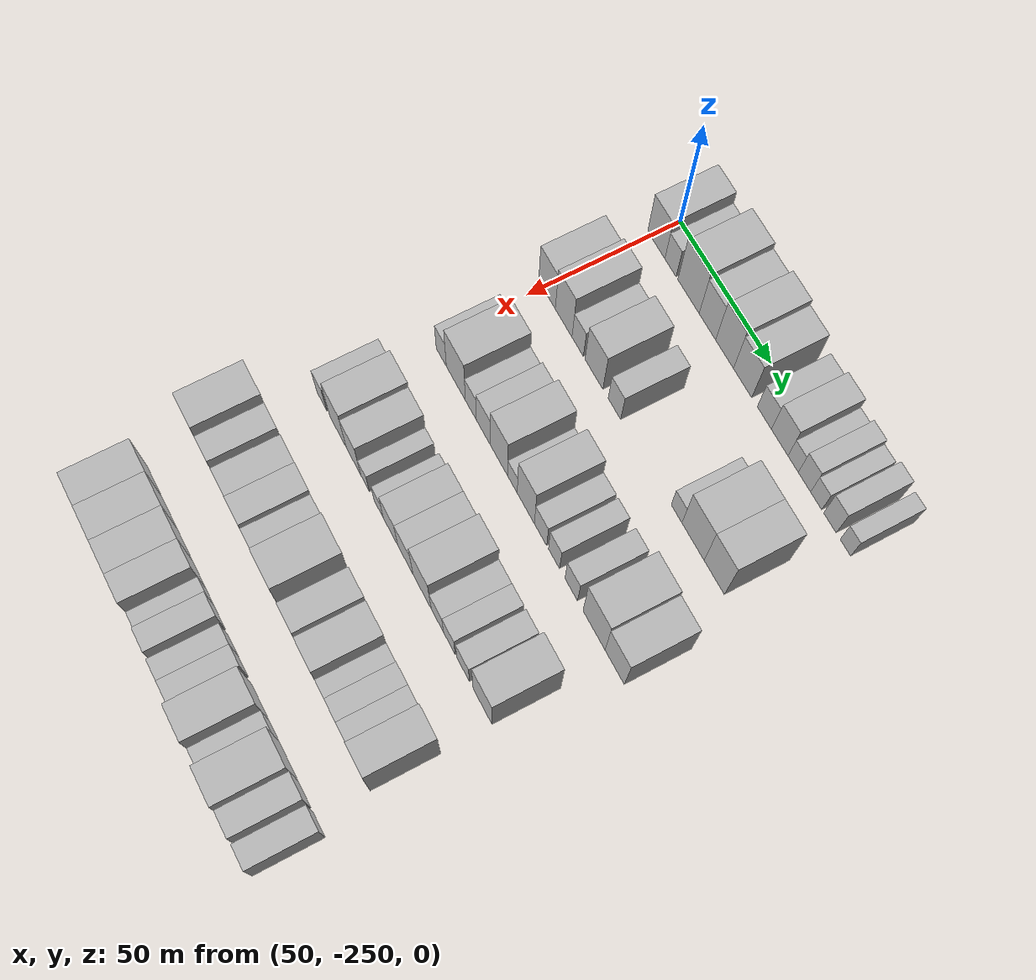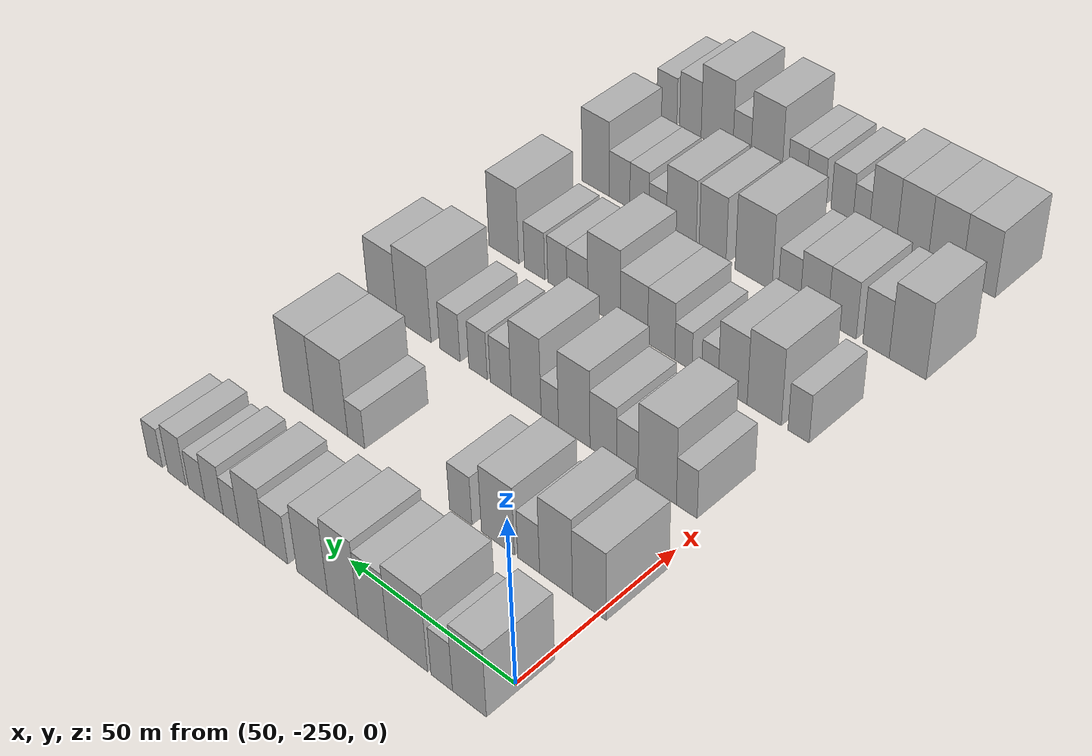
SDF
<sdf version="1.6">
 <world name="default">
  <model name="building_36">
   <static>1</static>
   <pose>50.0000 -246.6851 0 0.000000 0.000000 0.000000</pose>
   <link name="link">
    <pose>0 0 10.50 0 0 0</pose>
    <collision name="collision"><geometry><box><size>20.0000 9.8079 21.0000</size></box></geometry></collision>
    <visual name="visual">
     <cast_shadows>0</cast_shadows>
     <geometry><box><size>20.0000 9.8079 21.0000</size></box></geometry>
     <material>
      <script>
       <uri>model://HANNAS_wall/materials/scripts</uri>
       <uri>model://HANNAS_wall/materials/textures</uri>
       <name>vrc/HANNAS_wall</name>
      </script>
     </material>
    </visual>
   </link>
  </model>
  <model name="building_37">
   <static>1</static>
   <pose>50.0000 -238.6053 0 0.000000 0.000000 0.000000</pose>
   <link name="link">
    <pose>0 0 7.50 0 0 0</pose>
    <collision name="collision"><geometry><box><size>20.0000 6.3517 15.0000</size></box></geometry></collision>
    <visual name="visual">
     <cast_shadows>0</cast_shadows>
     <geometry><box><size>20.0000 6.3517 15.0000</size></box></geometry>
     <material>
      <script>
       <uri>model://HANNAS_wall/materials/scripts</uri>
       <uri>model://HANNAS_wall/materials/textures</uri>
       <name>vrc/HANNAS_wall</name>
      </script>
     </material>
    </visual>
   </link>
  </model>
  <model name="building_38">
   <static>1</static>
   <pose>50.0000 -228.4566 0 0.000000 0.000000 0.000000</pose>
   <link name="link">
    <pose>0 0 12.00 0 0 0</pose>
    <collision name="collision"><geometry><box><size>20.0000 11.9458 24.0000</size></box></geometry></collision>
    <visual name="visual">
     <cast_shadows>0</cast_shadows>
     <geometry><box><size>20.0000 11.9458 24.0000</size></box></geometry>
     <material>
      <script>
       <uri>model://HANNAS_wall/materials/scripts</uri>
       <uri>model://HANNAS_wall/materials/textures</uri>
       <name>vrc/HANNAS_wall</name>
      </script>
     </material>
    </visual>
   </link>
  </model>
  <model name="building_39">
   <static>1</static>
   <pose>50.0000 -217.9186 0 0.000000 0.000000 0.000000</pose>
   <link name="link">
    <pose>0 0 10.50 0 0 0</pose>
    <collision name="collision"><geometry><box><size>20.0000 9.1301 21.0000</size></box></geometry></collision>
    <visual name="visual">
     <cast_shadows>0</cast_shadows>
     <geometry><box><size>20.0000 9.1301 21.0000</size></box></geometry>
     <material>
      <script>
       <uri>model://HANNAS_wall/materials/scripts</uri>
       <uri>model://HANNAS_wall/materials/textures</uri>
       <name>vrc/HANNAS_wall</name>
      </script>
     </material>
    </visual>
   </link>
  </model>
  <model name="building_40">
   <static>1</static>
   <pose>50.0000 -208.4874 0 0.000000 0.000000 0.000000</pose>
   <link name="link">
    <pose>0 0 12.00 0 0 0</pose>
    <collision name="collision"><geometry><box><size>20.0000 9.7323 24.0000</size></box></geometry></collision>
    <visual name="visual">
     <cast_shadows>0</cast_shadows>
     <geometry><box><size>20.0000 9.7323 24.0000</size></box></geometry>
     <material>
      <script>
       <uri>model://HANNAS_wall/materials/scripts</uri>
       <uri>model://HANNAS_wall/materials/textures</uri>
       <name>vrc/HANNAS_wall</name>
      </script>
     </material>
    </visual>
   </link>
  </model>
  <model name="building_41">
   <static>1</static>
   <pose>50.0000 -198.7109 0 0.000000 0.000000 0.000000</pose>
   <link name="link">
    <pose>0 0 10.50 0 0 0</pose>
    <collision name="collision"><geometry><box><size>20.0000 9.8207 21.0000</size></box></geometry></collision>
    <visual name="visual">
     <cast_shadows>0</cast_shadows>
     <geometry><box><size>20.0000 9.8207 21.0000</size></box></geometry>
     <material>
      <script>
       <uri>model://HANNAS_wall/materials/scripts</uri>
       <uri>model://HANNAS_wall/materials/textures</uri>
       <name>vrc/HANNAS_wall</name>
      </script>
     </material>
    </visual>
   </link>
  </model>
  <model name="building_42">
   <static>1</static>
   <pose>50.0000 -187.0634 0 0.000000 0.000000 0.000000</pose>
   <link name="link">
    <pose>0 0 7.50 0 0 0</pose>
    <collision name="collision"><geometry><box><size>20.0000 7.4744 15.0000</size></box></geometry></collision>
    <visual name="visual">
     <cast_shadows>0</cast_shadows>
     <geometry><box><size>20.0000 7.4744 15.0000</size></box></geometry>
     <material>
      <script>
       <uri>model://HANNAS_wall/materials/scripts</uri>
       <uri>model://HANNAS_wall/materials/textures</uri>
       <name>vrc/HANNAS_wall</name>
      </script>
     </material>
    </visual>
   </link>
  </model>
  <model name="building_43">
   <static>1</static>
   <pose>50.0000 -178.9707 0 0.000000 0.000000 0.000000</pose>
   <link name="link">
    <pose>0 0 9.00 0 0 0</pose>
    <collision name="collision"><geometry><box><size>20.0000 8.7109 18.0000</size></box></geometry></collision>
    <visual name="visual">
     <cast_shadows>0</cast_shadows>
     <geometry><box><size>20.0000 8.7109 18.0000</size></box></geometry>
     <material>
      <script>
       <uri>model://HANNAS_wall/materials/scripts</uri>
       <uri>model://HANNAS_wall/materials/textures</uri>
       <name>vrc/HANNAS_wall</name>
      </script>
     </material>
    </visual>
   </link>
  </model>
  <model name="building_44">
   <static>1</static>
   <pose>50.0000 -171.9413 0 0.000000 0.000000 0.000000</pose>
   <link name="link">
    <pose>0 0 6.00 0 0 0</pose>
    <collision name="collision"><geometry><box><size>20.0000 5.3480 12.0000</size></box></geometry></collision>
    <visual name="visual">
     <cast_shadows>0</cast_shadows>
     <geometry><box><size>20.0000 5.3480 12.0000</size></box></geometry>
     <material>
      <script>
       <uri>model://HANNAS_wall/materials/scripts</uri>
       <uri>model://HANNAS_wall/materials/textures</uri>
       <name>vrc/HANNAS_wall</name>
      </script>
     </material>
    </visual>
   </link>
  </model>
  <model name="building_45">
   <static>1</static>
   <pose>50.0000 -166.0851 0 0.000000 0.000000 0.000000</pose>
   <link name="link">
    <pose>0 0 7.50 0 0 0</pose>
    <collision name="collision"><geometry><box><size>20.0000 6.3643 15.0000</size></box></geometry></collision>
    <visual name="visual">
     <cast_shadows>0</cast_shadows>
     <geometry><box><size>20.0000 6.3643 15.0000</size></box></geometry>
     <material>
      <script>
       <uri>model://HANNAS_wall/materials/scripts</uri>
       <uri>model://HANNAS_wall/materials/textures</uri>
       <name>vrc/HANNAS_wall</name>
      </script>
     </material>
    </visual>
   </link>
  </model>
  <model name="building_46">
   <static>1</static>
   <pose>50.0000 -160.0724 0 0.000000 0.000000 0.000000</pose>
   <link name="link">
    <pose>0 0 6.00 0 0 0</pose>
    <collision name="collision"><geometry><box><size>20.0000 5.6612 12.0000</size></box></geometry></collision>
    <visual name="visual">
     <cast_shadows>0</cast_shadows>
     <geometry><box><size>20.0000 5.6612 12.0000</size></box></geometry>
     <material>
      <script>
       <uri>model://HANNAS_wall/materials/scripts</uri>
       <uri>model://HANNAS_wall/materials/textures</uri>
       <name>vrc/HANNAS_wall</name>
      </script>
     </material>
    </visual>
   </link>
  </model>
  <model name="building_47">
   <static>1</static>
   <pose>50.0000 -153.0864 0 0.000000 0.000000 0.000000</pose>
   <link name="link">
    <pose>0 0 7.50 0 0 0</pose>
    <collision name="collision"><geometry><box><size>20.0000 6.3107 15.0000</size></box></geometry></collision>
    <visual name="visual">
     <cast_shadows>0</cast_shadows>
     <geometry><box><size>20.0000 6.3107 15.0000</size></box></geometry>
     <material>
      <script>
       <uri>model://HANNAS_wall/materials/scripts</uri>
       <uri>model://HANNAS_wall/materials/textures</uri>
       <name>vrc/HANNAS_wall</name>
      </script>
     </material>
    </visual>
   </link>
  </model>
  <model name="building_48">
   <static>1</static>
   <pose>50.0000 -145.3106 0 0.000000 0.000000 0.000000</pose>
   <link name="link">
    <pose>0 0 6.00 0 0 0</pose>
    <collision name="collision"><geometry><box><size>20.0000 5.2409 12.0000</size></box></geometry></collision>
    <visual name="visual">
     <cast_shadows>0</cast_shadows>
     <geometry><box><size>20.0000 5.2409 12.0000</size></box></geometry>
     <material>
      <script>
       <uri>model://HANNAS_wall/materials/scripts</uri>
       <uri>model://HANNAS_wall/materials/textures</uri>
       <name>vrc/HANNAS_wall</name>
      </script>
     </material>
    </visual>
   </link>
  </model>
  <model name="building_165">
   <static>1</static>
   <pose>85.0000 -247.3990 0 0.000000 0.000000 0.000000</pose>
   <link name="link">
    <pose>0 0 10.50 0 0 0</pose>
    <collision name="collision"><geometry><box><size>20.0000 9.7991 21.0000</size></box></geometry></collision>
    <visual name="visual">
     <cast_shadows>0</cast_shadows>
     <geometry><box><size>20.0000 9.7991 21.0000</size></box></geometry>
     <material>
      <script>
       <uri>model://HANNAS_wall/materials/scripts</uri>
       <uri>model://HANNAS_wall/materials/textures</uri>
       <name>vrc/HANNAS_wall</name>
      </script>
     </material>
    </visual>
   </link>
  </model>
  <model name="building_166">
   <static>1</static>
   <pose>85.0000 -237.6207 0 0.000000 0.000000 0.000000</pose>
   <link name="link">
    <pose>0 0 12.00 0 0 0</pose>
    <collision name="collision"><geometry><box><size>20.0000 9.7574 24.0000</size></box></geometry></collision>
    <visual name="visual">
     <cast_shadows>0</cast_shadows>
     <geometry><box><size>20.0000 9.7574 24.0000</size></box></geometry>
     <material>
      <script>
       <uri>model://HANNAS_wall/materials/scripts</uri>
       <uri>model://HANNAS_wall/materials/textures</uri>
       <name>vrc/HANNAS_wall</name>
      </script>
     </material>
    </visual>
   </link>
  </model>
  <model name="building_167">
   <static>1</static>
   <pose>85.0000 -229.4481 0 0.000000 0.000000 0.000000</pose>
   <link name="link">
    <pose>0 0 7.50 0 0 0</pose>
    <collision name="collision"><geometry><box><size>20.0000 6.5878 15.0000</size></box></geometry></collision>
    <visual name="visual">
     <cast_shadows>0</cast_shadows>
     <geometry><box><size>20.0000 6.5878 15.0000</size></box></geometry>
     <material>
      <script>
       <uri>model://HANNAS_wall/materials/scripts</uri>
       <uri>model://HANNAS_wall/materials/textures</uri>
       <name>vrc/HANNAS_wall</name>
      </script>
     </material>
    </visual>
   </link>
  </model>
  <model name="building_168">
   <static>1</static>
   <pose>85.0000 -220.0871 0 0.000000 0.000000 0.000000</pose>
   <link name="link">
    <pose>0 0 10.50 0 0 0</pose>
    <collision name="collision"><geometry><box><size>20.0000 10.1341 21.0000</size></box></geometry></collision>
    <visual name="visual">
     <cast_shadows>0</cast_shadows>
     <geometry><box><size>20.0000 10.1341 21.0000</size></box></geometry>
     <material>
      <script>
       <uri>model://HANNAS_wall/materials/scripts</uri>
       <uri>model://HANNAS_wall/materials/textures</uri>
       <name>vrc/HANNAS_wall</name>
      </script>
     </material>
    </visual>
   </link>
  </model>
  <model name="building_169">
   <static>1</static>
   <pose>85.0000 -208.5046 0 0.000000 0.000000 0.000000</pose>
   <link name="link">
    <pose>0 0 7.50 0 0 0</pose>
    <collision name="collision"><geometry><box><size>20.0000 7.0311 15.0000</size></box></geometry></collision>
    <visual name="visual">
     <cast_shadows>0</cast_shadows>
     <geometry><box><size>20.0000 7.0311 15.0000</size></box></geometry>
     <material>
      <script>
       <uri>model://HANNAS_wall/materials/scripts</uri>
       <uri>model://HANNAS_wall/materials/textures</uri>
       <name>vrc/HANNAS_wall</name>
      </script>
     </material>
    </visual>
   </link>
  </model>
  <model name="building_170">
   <static>1</static>
   <pose>85.0000 -174.3776 0 0.000000 0.000000 0.000000</pose>
   <link name="link">
    <pose>0 0 6.00 0 0 0</pose>
    <collision name="collision"><geometry><box><size>20.0000 5.7410 12.0000</size></box></geometry></collision>
    <visual name="visual">
     <cast_shadows>0</cast_shadows>
     <geometry><box><size>20.0000 5.7410 12.0000</size></box></geometry>
     <material>
      <script>
       <uri>model://HANNAS_wall/materials/scripts</uri>
       <uri>model://HANNAS_wall/materials/textures</uri>
       <name>vrc/HANNAS_wall</name>
      </script>
     </material>
    </visual>
   </link>
  </model>
  <model name="building_171">
   <static>1</static>
   <pose>85.0000 -165.6450 0 0.000000 0.000000 0.000000</pose>
   <link name="link">
    <pose>0 0 12.00 0 0 0</pose>
    <collision name="collision"><geometry><box><size>20.0000 11.7242 24.0000</size></box></geometry></collision>
    <visual name="visual">
     <cast_shadows>0</cast_shadows>
     <geometry><box><size>20.0000 11.7242 24.0000</size></box></geometry>
     <material>
      <script>
       <uri>model://HANNAS_wall/materials/scripts</uri>
       <uri>model://HANNAS_wall/materials/textures</uri>
       <name>vrc/HANNAS_wall</name>
      </script>
     </material>
    </visual>
   </link>
  </model>
  <model name="building_172">
   <static>1</static>
   <pose>85.0000 -154.4958 0 0.000000 0.000000 0.000000</pose>
   <link name="link">
    <pose>0 0 12.00 0 0 0</pose>
    <collision name="collision"><geometry><box><size>20.0000 10.5742 24.0000</size></box></geometry></collision>
    <visual name="visual">
     <cast_shadows>0</cast_shadows>
     <geometry><box><size>20.0000 10.5742 24.0000</size></box></geometry>
     <material>
      <script>
       <uri>model://HANNAS_wall/materials/scripts</uri>
       <uri>model://HANNAS_wall/materials/textures</uri>
       <name>vrc/HANNAS_wall</name>
      </script>
     </material>
    </visual>
   </link>
  </model>
  <model name="building_288">
   <static>1</static>
   <pose>120.0000 -244.2285 0 0.000000 0.000000 0.000000</pose>
   <link name="link">
    <pose>0 0 7.50 0 0 0</pose>
    <collision name="collision"><geometry><box><size>20.0000 6.1124 15.0000</size></box></geometry></collision>
    <visual name="visual">
     <cast_shadows>0</cast_shadows>
     <geometry><box><size>20.0000 6.1124 15.0000</size></box></geometry>
     <material>
      <script>
       <uri>model://HANNAS_wall/materials/scripts</uri>
       <uri>model://HANNAS_wall/materials/textures</uri>
       <name>vrc/HANNAS_wall</name>
      </script>
     </material>
    </visual>
   </link>
  </model>
  <model name="building_289">
   <static>1</static>
   <pose>120.0000 -235.4474 0 0.000000 0.000000 0.000000</pose>
   <link name="link">
    <pose>0 0 12.00 0 0 0</pose>
    <collision name="collision"><geometry><box><size>20.0000 11.4498 24.0000</size></box></geometry></collision>
    <visual name="visual">
     <cast_shadows>0</cast_shadows>
     <geometry><box><size>20.0000 11.4498 24.0000</size></box></geometry>
     <material>
      <script>
       <uri>model://HANNAS_wall/materials/scripts</uri>
       <uri>model://HANNAS_wall/materials/textures</uri>
       <name>vrc/HANNAS_wall</name>
      </script>
     </material>
    </visual>
   </link>
  </model>
  <model name="building_290">
   <static>1</static>
   <pose>120.0000 -226.4580 0 0.000000 0.000000 0.000000</pose>
   <link name="link">
    <pose>0 0 7.50 0 0 0</pose>
    <collision name="collision"><geometry><box><size>20.0000 6.5289 15.0000</size></box></geometry></collision>
    <visual name="visual">
     <cast_shadows>0</cast_shadows>
     <geometry><box><size>20.0000 6.5289 15.0000</size></box></geometry>
     <material>
      <script>
       <uri>model://HANNAS_wall/materials/scripts</uri>
       <uri>model://HANNAS_wall/materials/textures</uri>
       <name>vrc/HANNAS_wall</name>
      </script>
     </material>
    </visual>
   </link>
  </model>
  <model name="building_291">
   <static>1</static>
   <pose>120.0000 -219.0518 0 0.000000 0.000000 0.000000</pose>
   <link name="link">
    <pose>0 0 9.00 0 0 0</pose>
    <collision name="collision"><geometry><box><size>20.0000 8.2834 18.0000</size></box></geometry></collision>
    <visual name="visual">
     <cast_shadows>0</cast_shadows>
     <geometry><box><size>20.0000 8.2834 18.0000</size></box></geometry>
     <material>
      <script>
       <uri>model://HANNAS_wall/materials/scripts</uri>
       <uri>model://HANNAS_wall/materials/textures</uri>
       <name>vrc/HANNAS_wall</name>
      </script>
     </material>
    </visual>
   </link>
  </model>
  <model name="building_292">
   <static>1</static>
   <pose>120.0000 -209.9386 0 0.000000 0.000000 0.000000</pose>
   <link name="link">
    <pose>0 0 12.00 0 0 0</pose>
    <collision name="collision"><geometry><box><size>20.0000 9.9431 24.0000</size></box></geometry></collision>
    <visual name="visual">
     <cast_shadows>0</cast_shadows>
     <geometry><box><size>20.0000 9.9431 24.0000</size></box></geometry>
     <material>
      <script>
       <uri>model://HANNAS_wall/materials/scripts</uri>
       <uri>model://HANNAS_wall/materials/textures</uri>
       <name>vrc/HANNAS_wall</name>
      </script>
     </material>
    </visual>
   </link>
  </model>
  <model name="building_293">
   <static>1</static>
   <pose>120.0000 -202.1947 0 0.000000 0.000000 0.000000</pose>
   <link name="link">
    <pose>0 0 6.00 0 0 0</pose>
    <collision name="collision"><geometry><box><size>20.0000 5.5446 12.0000</size></box></geometry></collision>
    <visual name="visual">
     <cast_shadows>0</cast_shadows>
     <geometry><box><size>20.0000 5.5446 12.0000</size></box></geometry>
     <material>
      <script>
       <uri>model://HANNAS_wall/materials/scripts</uri>
       <uri>model://HANNAS_wall/materials/textures</uri>
       <name>vrc/HANNAS_wall</name>
      </script>
     </material>
    </visual>
   </link>
  </model>
  <model name="building_294">
   <static>1</static>
   <pose>120.0000 -194.5436 0 0.000000 0.000000 0.000000</pose>
   <link name="link">
    <pose>0 0 12.00 0 0 0</pose>
    <collision name="collision"><geometry><box><size>20.0000 9.7576 24.0000</size></box></geometry></collision>
    <visual name="visual">
     <cast_shadows>0</cast_shadows>
     <geometry><box><size>20.0000 9.7576 24.0000</size></box></geometry>
     <material>
      <script>
       <uri>model://HANNAS_wall/materials/scripts</uri>
       <uri>model://HANNAS_wall/materials/textures</uri>
       <name>vrc/HANNAS_wall</name>
      </script>
     </material>
    </visual>
   </link>
  </model>
  <model name="building_295">
   <static>1</static>
   <pose>120.0000 -186.2116 0 0.000000 0.000000 0.000000</pose>
   <link name="link">
    <pose>0 0 7.50 0 0 0</pose>
    <collision name="collision"><geometry><box><size>20.0000 6.9064 15.0000</size></box></geometry></collision>
    <visual name="visual">
     <cast_shadows>0</cast_shadows>
     <geometry><box><size>20.0000 6.9064 15.0000</size></box></geometry>
     <material>
      <script>
       <uri>model://HANNAS_wall/materials/scripts</uri>
       <uri>model://HANNAS_wall/materials/textures</uri>
       <name>vrc/HANNAS_wall</name>
      </script>
     </material>
    </visual>
   </link>
  </model>
  <model name="building_296">
   <static>1</static>
   <pose>120.0000 -178.6757 0 0.000000 0.000000 0.000000</pose>
   <link name="link">
    <pose>0 0 7.50 0 0 0</pose>
    <collision name="collision"><geometry><box><size>20.0000 6.1654 15.0000</size></box></geometry></collision>
    <visual name="visual">
     <cast_shadows>0</cast_shadows>
     <geometry><box><size>20.0000 6.1654 15.0000</size></box></geometry>
     <material>
      <script>
       <uri>model://HANNAS_wall/materials/scripts</uri>
       <uri>model://HANNAS_wall/materials/textures</uri>
       <name>vrc/HANNAS_wall</name>
      </script>
     </material>
    </visual>
   </link>
  </model>
  <model name="building_297">
   <static>1</static>
   <pose>120.0000 -169.1448 0 0.000000 0.000000 0.000000</pose>
   <link name="link">
    <pose>0 0 7.50 0 0 0</pose>
    <collision name="collision"><geometry><box><size>20.0000 6.8964 15.0000</size></box></geometry></collision>
    <visual name="visual">
     <cast_shadows>0</cast_shadows>
     <geometry><box><size>20.0000 6.8964 15.0000</size></box></geometry>
     <material>
      <script>
       <uri>model://HANNAS_wall/materials/scripts</uri>
       <uri>model://HANNAS_wall/materials/textures</uri>
       <name>vrc/HANNAS_wall</name>
      </script>
     </material>
    </visual>
   </link>
  </model>
  <model name="building_298">
   <static>1</static>
   <pose>120.0000 -156.7828 0 0.000000 0.000000 0.000000</pose>
   <link name="link">
    <pose>0 0 12.00 0 0 0</pose>
    <collision name="collision"><geometry><box><size>20.0000 11.8277 24.0000</size></box></geometry></collision>
    <visual name="visual">
     <cast_shadows>0</cast_shadows>
     <geometry><box><size>20.0000 11.8277 24.0000</size></box></geometry>
     <material>
      <script>
       <uri>model://HANNAS_wall/materials/scripts</uri>
       <uri>model://HANNAS_wall/materials/textures</uri>
       <name>vrc/HANNAS_wall</name>
      </script>
     </material>
    </visual>
   </link>
  </model>
  <model name="building_299">
   <static>1</static>
   <pose>120.0000 -145.7314 0 0.000000 0.000000 0.000000</pose>
   <link name="link">
    <pose>0 0 10.50 0 0 0</pose>
    <collision name="collision"><geometry><box><size>20.0000 10.2751 21.0000</size></box></geometry></collision>
    <visual name="visual">
     <cast_shadows>0</cast_shadows>
     <geometry><box><size>20.0000 10.2751 21.0000</size></box></geometry>
     <material>
      <script>
       <uri>model://HANNAS_wall/materials/scripts</uri>
       <uri>model://HANNAS_wall/materials/textures</uri>
       <name>vrc/HANNAS_wall</name>
      </script>
     </material>
    </visual>
   </link>
  </model>
  <model name="building_417">
   <static>1</static>
   <pose>155.0000 -247.7273 0 0.000000 0.000000 0.000000</pose>
   <link name="link">
    <pose>0 0 7.50 0 0 0</pose>
    <collision name="collision"><geometry><box><size>20.0000 6.2626 15.0000</size></box></geometry></collision>
    <visual name="visual">
     <cast_shadows>0</cast_shadows>
     <geometry><box><size>20.0000 6.2626 15.0000</size></box></geometry>
     <material>
      <script>
       <uri>model://HANNAS_wall/materials/scripts</uri>
       <uri>model://HANNAS_wall/materials/textures</uri>
       <name>vrc/HANNAS_wall</name>
      </script>
     </material>
    </visual>
   </link>
  </model>
  <model name="building_418">
   <static>1</static>
   <pose>155.0000 -237.4516 0 0.000000 0.000000 0.000000</pose>
   <link name="link">
    <pose>0 0 12.00 0 0 0</pose>
    <collision name="collision"><geometry><box><size>20.0000 10.2890 24.0000</size></box></geometry></collision>
    <visual name="visual">
     <cast_shadows>0</cast_shadows>
     <geometry><box><size>20.0000 10.2890 24.0000</size></box></geometry>
     <material>
      <script>
       <uri>model://HANNAS_wall/materials/scripts</uri>
       <uri>model://HANNAS_wall/materials/textures</uri>
       <name>vrc/HANNAS_wall</name>
      </script>
     </material>
    </visual>
   </link>
  </model>
  <model name="building_419">
   <static>1</static>
   <pose>155.0000 -227.8575 0 0.000000 0.000000 0.000000</pose>
   <link name="link">
    <pose>0 0 10.50 0 0 0</pose>
    <collision name="collision"><geometry><box><size>20.0000 8.8992 21.0000</size></box></geometry></collision>
    <visual name="visual">
     <cast_shadows>0</cast_shadows>
     <geometry><box><size>20.0000 8.8992 21.0000</size></box></geometry>
     <material>
      <script>
       <uri>model://HANNAS_wall/materials/scripts</uri>
       <uri>model://HANNAS_wall/materials/textures</uri>
       <name>vrc/HANNAS_wall</name>
      </script>
     </material>
    </visual>
   </link>
  </model>
  <model name="building_420">
   <static>1</static>
   <pose>155.0000 -220.8367 0 0.000000 0.000000 0.000000</pose>
   <link name="link">
    <pose>0 0 6.00 0 0 0</pose>
    <collision name="collision"><geometry><box><size>20.0000 5.1425 12.0000</size></box></geometry></collision>
    <visual name="visual">
     <cast_shadows>0</cast_shadows>
     <geometry><box><size>20.0000 5.1425 12.0000</size></box></geometry>
     <material>
      <script>
       <uri>model://HANNAS_wall/materials/scripts</uri>
       <uri>model://HANNAS_wall/materials/textures</uri>
       <name>vrc/HANNAS_wall</name>
      </script>
     </material>
    </visual>
   </link>
  </model>
  <model name="building_421">
   <static>1</static>
   <pose>155.0000 -212.5443 0 0.000000 0.000000 0.000000</pose>
   <link name="link">
    <pose>0 0 6.00 0 0 0</pose>
    <collision name="collision"><geometry><box><size>20.0000 5.4423 12.0000</size></box></geometry></collision>
    <visual name="visual">
     <cast_shadows>0</cast_shadows>
     <geometry><box><size>20.0000 5.4423 12.0000</size></box></geometry>
     <material>
      <script>
       <uri>model://HANNAS_wall/materials/scripts</uri>
       <uri>model://HANNAS_wall/materials/textures</uri>
       <name>vrc/HANNAS_wall</name>
      </script>
     </material>
    </visual>
   </link>
  </model>
  <model name="building_422">
   <static>1</static>
   <pose>155.0000 -205.4998 0 0.000000 0.000000 0.000000</pose>
   <link name="link">
    <pose>0 0 9.00 0 0 0</pose>
    <collision name="collision"><geometry><box><size>20.0000 8.6468 18.0000</size></box></geometry></collision>
    <visual name="visual">
     <cast_shadows>0</cast_shadows>
     <geometry><box><size>20.0000 8.6468 18.0000</size></box></geometry>
     <material>
      <script>
       <uri>model://HANNAS_wall/materials/scripts</uri>
       <uri>model://HANNAS_wall/materials/textures</uri>
       <name>vrc/HANNAS_wall</name>
      </script>
     </material>
    </visual>
   </link>
  </model>
  <model name="building_423">
   <static>1</static>
   <pose>155.0000 -196.7037 0 0.000000 0.000000 0.000000</pose>
   <link name="link">
    <pose>0 0 9.00 0 0 0</pose>
    <collision name="collision"><geometry><box><size>20.0000 8.9453 18.0000</size></box></geometry></collision>
    <visual name="visual">
     <cast_shadows>0</cast_shadows>
     <geometry><box><size>20.0000 8.9453 18.0000</size></box></geometry>
     <material>
      <script>
       <uri>model://HANNAS_wall/materials/scripts</uri>
       <uri>model://HANNAS_wall/materials/textures</uri>
       <name>vrc/HANNAS_wall</name>
      </script>
     </material>
    </visual>
   </link>
  </model>
  <model name="building_424">
   <static>1</static>
   <pose>155.0000 -186.8911 0 0.000000 0.000000 0.000000</pose>
   <link name="link">
    <pose>0 0 12.00 0 0 0</pose>
    <collision name="collision"><geometry><box><size>20.0000 10.6799 24.0000</size></box></geometry></collision>
    <visual name="visual">
     <cast_shadows>0</cast_shadows>
     <geometry><box><size>20.0000 10.6799 24.0000</size></box></geometry>
     <material>
      <script>
       <uri>model://HANNAS_wall/materials/scripts</uri>
       <uri>model://HANNAS_wall/materials/textures</uri>
       <name>vrc/HANNAS_wall</name>
      </script>
     </material>
    </visual>
   </link>
  </model>
  <model name="building_425">
   <static>1</static>
   <pose>155.0000 -178.0190 0 0.000000 0.000000 0.000000</pose>
   <link name="link">
    <pose>0 0 7.50 0 0 0</pose>
    <collision name="collision"><geometry><box><size>20.0000 7.0643 15.0000</size></box></geometry></collision>
    <visual name="visual">
     <cast_shadows>0</cast_shadows>
     <geometry><box><size>20.0000 7.0643 15.0000</size></box></geometry>
     <material>
      <script>
       <uri>model://HANNAS_wall/materials/scripts</uri>
       <uri>model://HANNAS_wall/materials/textures</uri>
       <name>vrc/HANNAS_wall</name>
      </script>
     </material>
    </visual>
   </link>
  </model>
  <model name="building_426">
   <static>1</static>
   <pose>155.0000 -171.1957 0 0.000000 0.000000 0.000000</pose>
   <link name="link">
    <pose>0 0 7.50 0 0 0</pose>
    <collision name="collision"><geometry><box><size>20.0000 6.5822 15.0000</size></box></geometry></collision>
    <visual name="visual">
     <cast_shadows>0</cast_shadows>
     <geometry><box><size>20.0000 6.5822 15.0000</size></box></geometry>
     <material>
      <script>
       <uri>model://HANNAS_wall/materials/scripts</uri>
       <uri>model://HANNAS_wall/materials/textures</uri>
       <name>vrc/HANNAS_wall</name>
      </script>
     </material>
    </visual>
   </link>
  </model>
  <model name="building_427">
   <static>1</static>
   <pose>155.0000 -163.3842 0 0.000000 0.000000 0.000000</pose>
   <link name="link">
    <pose>0 0 7.50 0 0 0</pose>
    <collision name="collision"><geometry><box><size>20.0000 7.0408 15.0000</size></box></geometry></collision>
    <visual name="visual">
     <cast_shadows>0</cast_shadows>
     <geometry><box><size>20.0000 7.0408 15.0000</size></box></geometry>
     <material>
      <script>
       <uri>model://HANNAS_wall/materials/scripts</uri>
       <uri>model://HANNAS_wall/materials/textures</uri>
       <name>vrc/HANNAS_wall</name>
      </script>
     </material>
    </visual>
   </link>
  </model>
  <model name="building_428">
   <static>1</static>
   <pose>155.0000 -152.6001 0 0.000000 0.000000 0.000000</pose>
   <link name="link">
    <pose>0 0 12.00 0 0 0</pose>
    <collision name="collision"><geometry><box><size>20.0000 10.5275 24.0000</size></box></geometry></collision>
    <visual name="visual">
     <cast_shadows>0</cast_shadows>
     <geometry><box><size>20.0000 10.5275 24.0000</size></box></geometry>
     <material>
      <script>
       <uri>model://HANNAS_wall/materials/scripts</uri>
       <uri>model://HANNAS_wall/materials/textures</uri>
       <name>vrc/HANNAS_wall</name>
      </script>
     </material>
    </visual>
   </link>
  </model>
  <model name="building_548">
   <static>1</static>
   <pose>190.0000 -252.5562 0 0.000000 0.000000 0.000000</pose>
   <link name="link">
    <pose>0 0 12.00 0 0 0</pose>
    <collision name="collision"><geometry><box><size>20.0000 10.9132 24.0000</size></box></geometry></collision>
    <visual name="visual">
     <cast_shadows>0</cast_shadows>
     <geometry><box><size>20.0000 10.9132 24.0000</size></box></geometry>
     <material>
      <script>
       <uri>model://HANNAS_wall/materials/scripts</uri>
       <uri>model://HANNAS_wall/materials/textures</uri>
       <name>vrc/HANNAS_wall</name>
      </script>
     </material>
    </visual>
   </link>
  </model>
  <model name="building_549">
   <static>1</static>
   <pose>190.0000 -243.1246 0 0.000000 0.000000 0.000000</pose>
   <link name="link">
    <pose>0 0 9.00 0 0 0</pose>
    <collision name="collision"><geometry><box><size>20.0000 7.9500 18.0000</size></box></geometry></collision>
    <visual name="visual">
     <cast_shadows>0</cast_shadows>
     <geometry><box><size>20.0000 7.9500 18.0000</size></box></geometry>
     <material>
      <script>
       <uri>model://HANNAS_wall/materials/scripts</uri>
       <uri>model://HANNAS_wall/materials/textures</uri>
       <name>vrc/HANNAS_wall</name>
      </script>
     </material>
    </visual>
   </link>
  </model>
  <model name="building_550">
   <static>1</static>
   <pose>190.0000 -232.8265 0 0.000000 0.000000 0.000000</pose>
   <link name="link">
    <pose>0 0 9.00 0 0 0</pose>
    <collision name="collision"><geometry><box><size>20.0000 8.6462 18.0000</size></box></geometry></collision>
    <visual name="visual">
     <cast_shadows>0</cast_shadows>
     <geometry><box><size>20.0000 8.6462 18.0000</size></box></geometry>
     <material>
      <script>
       <uri>model://HANNAS_wall/materials/scripts</uri>
       <uri>model://HANNAS_wall/materials/textures</uri>
       <name>vrc/HANNAS_wall</name>
      </script>
     </material>
    </visual>
   </link>
  </model>
  <model name="building_551">
   <static>1</static>
   <pose>190.0000 -224.1488 0 0.000000 0.000000 0.000000</pose>
   <link name="link">
    <pose>0 0 9.00 0 0 0</pose>
    <collision name="collision"><geometry><box><size>20.0000 8.7092 18.0000</size></box></geometry></collision>
    <visual name="visual">
     <cast_shadows>0</cast_shadows>
     <geometry><box><size>20.0000 8.7092 18.0000</size></box></geometry>
     <material>
      <script>
       <uri>model://HANNAS_wall/materials/scripts</uri>
       <uri>model://HANNAS_wall/materials/textures</uri>
       <name>vrc/HANNAS_wall</name>
      </script>
     </material>
    </visual>
   </link>
  </model>
  <model name="building_552">
   <static>1</static>
   <pose>190.0000 -216.3597 0 0.000000 0.000000 0.000000</pose>
   <link name="link">
    <pose>0 0 7.50 0 0 0</pose>
    <collision name="collision"><geometry><box><size>20.0000 6.8690 15.0000</size></box></geometry></collision>
    <visual name="visual">
     <cast_shadows>0</cast_shadows>
     <geometry><box><size>20.0000 6.8690 15.0000</size></box></geometry>
     <material>
      <script>
       <uri>model://HANNAS_wall/materials/scripts</uri>
       <uri>model://HANNAS_wall/materials/textures</uri>
       <name>vrc/HANNAS_wall</name>
      </script>
     </material>
    </visual>
   </link>
  </model>
  <model name="building_553">
   <static>1</static>
   <pose>190.0000 -204.9652 0 0.000000 0.000000 0.000000</pose>
   <link name="link">
    <pose>0 0 12.00 0 0 0</pose>
    <collision name="collision"><geometry><box><size>20.0000 11.9201 24.0000</size></box></geometry></collision>
    <visual name="visual">
     <cast_shadows>0</cast_shadows>
     <geometry><box><size>20.0000 11.9201 24.0000</size></box></geometry>
     <material>
      <script>
       <uri>model://HANNAS_wall/materials/scripts</uri>
       <uri>model://HANNAS_wall/materials/textures</uri>
       <name>vrc/HANNAS_wall</name>
      </script>
     </material>
    </visual>
   </link>
  </model>
  <model name="building_554">
   <static>1</static>
   <pose>190.0000 -191.5672 0 0.000000 0.000000 0.000000</pose>
   <link name="link">
    <pose>0 0 10.50 0 0 0</pose>
    <collision name="collision"><geometry><box><size>20.0000 8.8759 21.0000</size></box></geometry></collision>
    <visual name="visual">
     <cast_shadows>0</cast_shadows>
     <geometry><box><size>20.0000 8.8759 21.0000</size></box></geometry>
     <material>
      <script>
       <uri>model://HANNAS_wall/materials/scripts</uri>
       <uri>model://HANNAS_wall/materials/textures</uri>
       <name>vrc/HANNAS_wall</name>
      </script>
     </material>
    </visual>
   </link>
  </model>
  <model name="building_555">
   <static>1</static>
   <pose>190.0000 -181.1472 0 0.000000 0.000000 0.000000</pose>
   <link name="link">
    <pose>0 0 10.50 0 0 0</pose>
    <collision name="collision"><geometry><box><size>20.0000 9.9642 21.0000</size></box></geometry></collision>
    <visual name="visual">
     <cast_shadows>0</cast_shadows>
     <geometry><box><size>20.0000 9.9642 21.0000</size></box></geometry>
     <material>
      <script>
       <uri>model://HANNAS_wall/materials/scripts</uri>
       <uri>model://HANNAS_wall/materials/textures</uri>
       <name>vrc/HANNAS_wall</name>
      </script>
     </material>
    </visual>
   </link>
  </model>
  <model name="building_556">
   <static>1</static>
   <pose>190.0000 -173.1755 0 0.000000 0.000000 0.000000</pose>
   <link name="link">
    <pose>0 0 6.00 0 0 0</pose>
    <collision name="collision"><geometry><box><size>20.0000 5.9791 12.0000</size></box></geometry></collision>
    <visual name="visual">
     <cast_shadows>0</cast_shadows>
     <geometry><box><size>20.0000 5.9791 12.0000</size></box></geometry>
     <material>
      <script>
       <uri>model://HANNAS_wall/materials/scripts</uri>
       <uri>model://HANNAS_wall/materials/textures</uri>
       <name>vrc/HANNAS_wall</name>
      </script>
     </material>
    </visual>
   </link>
  </model>
  <model name="building_557">
   <static>1</static>
   <pose>190.0000 -166.8818 0 0.000000 0.000000 0.000000</pose>
   <link name="link">
    <pose>0 0 7.50 0 0 0</pose>
    <collision name="collision"><geometry><box><size>20.0000 6.6083 15.0000</size></box></geometry></collision>
    <visual name="visual">
     <cast_shadows>0</cast_shadows>
     <geometry><box><size>20.0000 6.6083 15.0000</size></box></geometry>
     <material>
      <script>
       <uri>model://HANNAS_wall/materials/scripts</uri>
       <uri>model://HANNAS_wall/materials/textures</uri>
       <name>vrc/HANNAS_wall</name>
      </script>
     </material>
    </visual>
   </link>
  </model>
  <model name="building_558">
   <static>1</static>
   <pose>190.0000 -160.0083 0 0.000000 0.000000 0.000000</pose>
   <link name="link">
    <pose>0 0 7.50 0 0 0</pose>
    <collision name="collision"><geometry><box><size>20.0000 7.1387 15.0000</size></box></geometry></collision>
    <visual name="visual">
     <cast_shadows>0</cast_shadows>
     <geometry><box><size>20.0000 7.1387 15.0000</size></box></geometry>
     <material>
      <script>
       <uri>model://HANNAS_wall/materials/scripts</uri>
       <uri>model://HANNAS_wall/materials/textures</uri>
       <name>vrc/HANNAS_wall</name>
      </script>
     </material>
    </visual>
   </link>
  </model>
  <model name="building_559">
   <static>1</static>
   <pose>190.0000 -151.5951 0 0.000000 0.000000 0.000000</pose>
   <link name="link">
    <pose>0 0 12.00 0 0 0</pose>
    <collision name="collision"><geometry><box><size>20.0000 9.6877 24.0000</size></box></geometry></collision>
    <visual name="visual">
     <cast_shadows>0</cast_shadows>
     <geometry><box><size>20.0000 9.6877 24.0000</size></box></geometry>
     <material>
      <script>
       <uri>model://HANNAS_wall/materials/scripts</uri>
       <uri>model://HANNAS_wall/materials/textures</uri>
       <name>vrc/HANNAS_wall</name>
      </script>
     </material>
    </visual>
   </link>
  </model>
  <model name="building_672">
   <static>1</static>
   <pose>225.0000 -248.0370 0 0.000000 0.000000 0.000000</pose>
   <link name="link">
    <pose>0 0 10.50 0 0 0</pose>
    <collision name="collision"><geometry><box><size>20.0000 10.0683 21.0000</size></box></geometry></collision>
    <visual name="visual">
     <cast_shadows>0</cast_shadows>
     <geometry><box><size>20.0000 10.0683 21.0000</size></box></geometry>
     <material>
      <script>
       <uri>model://HANNAS_wall/materials/scripts</uri>
       <uri>model://HANNAS_wall/materials/textures</uri>
       <name>vrc/HANNAS_wall</name>
      </script>
     </material>
    </visual>
   </link>
  </model>
  <model name="building_673">
   <static>1</static>
   <pose>225.0000 -237.8283 0 0.000000 0.000000 0.000000</pose>
   <link name="link">
    <pose>0 0 10.50 0 0 0</pose>
    <collision name="collision"><geometry><box><size>20.0000 10.3492 21.0000</size></box></geometry></collision>
    <visual name="visual">
     <cast_shadows>0</cast_shadows>
     <geometry><box><size>20.0000 10.3492 21.0000</size></box></geometry>
     <material>
      <script>
       <uri>model://HANNAS_wall/materials/scripts</uri>
       <uri>model://HANNAS_wall/materials/textures</uri>
       <name>vrc/HANNAS_wall</name>
      </script>
     </material>
    </visual>
   </link>
  </model>
  <model name="building_674">
   <static>1</static>
   <pose>225.0000 -227.7157 0 0.000000 0.000000 0.000000</pose>
   <link name="link">
    <pose>0 0 10.50 0 0 0</pose>
    <collision name="collision"><geometry><box><size>20.0000 9.8760 21.0000</size></box></geometry></collision>
    <visual name="visual">
     <cast_shadows>0</cast_shadows>
     <geometry><box><size>20.0000 9.8760 21.0000</size></box></geometry>
     <material>
      <script>
       <uri>model://HANNAS_wall/materials/scripts</uri>
       <uri>model://HANNAS_wall/materials/textures</uri>
       <name>vrc/HANNAS_wall</name>
      </script>
     </material>
    </visual>
   </link>
  </model>
  <model name="building_675">
   <static>1</static>
   <pose>225.0000 -218.4849 0 0.000000 0.000000 0.000000</pose>
   <link name="link">
    <pose>0 0 10.50 0 0 0</pose>
    <collision name="collision"><geometry><box><size>20.0000 8.5855 21.0000</size></box></geometry></collision>
    <visual name="visual">
     <cast_shadows>0</cast_shadows>
     <geometry><box><size>20.0000 8.5855 21.0000</size></box></geometry>
     <material>
      <script>
       <uri>model://HANNAS_wall/materials/scripts</uri>
       <uri>model://HANNAS_wall/materials/textures</uri>
       <name>vrc/HANNAS_wall</name>
      </script>
     </material>
    </visual>
   </link>
  </model>
  <model name="building_676">
   <static>1</static>
   <pose>225.0000 -211.5512 0 0.000000 0.000000 0.000000</pose>
   <link name="link">
    <pose>0 0 6.00 0 0 0</pose>
    <collision name="collision"><geometry><box><size>20.0000 5.2820 12.0000</size></box></geometry></collision>
    <visual name="visual">
     <cast_shadows>0</cast_shadows>
     <geometry><box><size>20.0000 5.2820 12.0000</size></box></geometry>
     <material>
      <script>
       <uri>model://HANNAS_wall/materials/scripts</uri>
       <uri>model://HANNAS_wall/materials/textures</uri>
       <name>vrc/HANNAS_wall</name>
      </script>
     </material>
    </visual>
   </link>
  </model>
  <model name="building_677">
   <static>1</static>
   <pose>225.0000 -205.3108 0 0.000000 0.000000 0.000000</pose>
   <link name="link">
    <pose>0 0 7.50 0 0 0</pose>
    <collision name="collision"><geometry><box><size>20.0000 7.1987 15.0000</size></box></geometry></collision>
    <visual name="visual">
     <cast_shadows>0</cast_shadows>
     <geometry><box><size>20.0000 7.1987 15.0000</size></box></geometry>
     <material>
      <script>
       <uri>model://HANNAS_wall/materials/scripts</uri>
       <uri>model://HANNAS_wall/materials/textures</uri>
       <name>vrc/HANNAS_wall</name>
      </script>
     </material>
    </visual>
   </link>
  </model>
  <model name="building_678">
   <static>1</static>
   <pose>225.0000 -196.6447 0 0.000000 0.000000 0.000000</pose>
   <link name="link">
    <pose>0 0 7.50 0 0 0</pose>
    <collision name="collision"><geometry><box><size>20.0000 6.1336 15.0000</size></box></geometry></collision>
    <visual name="visual">
     <cast_shadows>0</cast_shadows>
     <geometry><box><size>20.0000 6.1336 15.0000</size></box></geometry>
     <material>
      <script>
       <uri>model://HANNAS_wall/materials/scripts</uri>
       <uri>model://HANNAS_wall/materials/textures</uri>
       <name>vrc/HANNAS_wall</name>
      </script>
     </material>
    </visual>
   </link>
  </model>
  <model name="building_679">
   <static>1</static>
   <pose>225.0000 -190.4409 0 0.000000 0.000000 0.000000</pose>
   <link name="link">
    <pose>0 0 7.50 0 0 0</pose>
    <collision name="collision"><geometry><box><size>20.0000 6.2741 15.0000</size></box></geometry></collision>
    <visual name="visual">
     <cast_shadows>0</cast_shadows>
     <geometry><box><size>20.0000 6.2741 15.0000</size></box></geometry>
     <material>
      <script>
       <uri>model://HANNAS_wall/materials/scripts</uri>
       <uri>model://HANNAS_wall/materials/textures</uri>
       <name>vrc/HANNAS_wall</name>
      </script>
     </material>
    </visual>
   </link>
  </model>
  <model name="building_680">
   <static>1</static>
   <pose>225.0000 -180.0250 0 0.000000 0.000000 0.000000</pose>
   <link name="link">
    <pose>0 0 12.00 0 0 0</pose>
    <collision name="collision"><geometry><box><size>20.0000 10.5576 24.0000</size></box></geometry></collision>
    <visual name="visual">
     <cast_shadows>0</cast_shadows>
     <geometry><box><size>20.0000 10.5576 24.0000</size></box></geometry>
     <material>
      <script>
       <uri>model://HANNAS_wall/materials/scripts</uri>
       <uri>model://HANNAS_wall/materials/textures</uri>
       <name>vrc/HANNAS_wall</name>
      </script>
     </material>
    </visual>
   </link>
  </model>
  <model name="building_681">
   <static>1</static>
   <pose>225.0000 -171.6613 0 0.000000 0.000000 0.000000</pose>
   <link name="link">
    <pose>0 0 7.50 0 0 0</pose>
    <collision name="collision"><geometry><box><size>20.0000 6.1698 15.0000</size></box></geometry></collision>
    <visual name="visual">
     <cast_shadows>0</cast_shadows>
     <geometry><box><size>20.0000 6.1698 15.0000</size></box></geometry>
     <material>
      <script>
       <uri>model://HANNAS_wall/materials/scripts</uri>
       <uri>model://HANNAS_wall/materials/textures</uri>
       <name>vrc/HANNAS_wall</name>
      </script>
     </material>
    </visual>
   </link>
  </model>
  <model name="building_682">
   <static>1</static>
   <pose>225.0000 -163.0300 0 0.000000 0.000000 0.000000</pose>
   <link name="link">
    <pose>0 0 12.00 0 0 0</pose>
    <collision name="collision"><geometry><box><size>20.0000 11.0928 24.0000</size></box></geometry></collision>
    <visual name="visual">
     <cast_shadows>0</cast_shadows>
     <geometry><box><size>20.0000 11.0928 24.0000</size></box></geometry>
     <material>
      <script>
       <uri>model://HANNAS_wall/materials/scripts</uri>
       <uri>model://HANNAS_wall/materials/textures</uri>
       <name>vrc/HANNAS_wall</name>
      </script>
     </material>
    </visual>
   </link>
  </model>
  <model name="building_683">
   <static>1</static>
   <pose>225.0000 -153.6686 0 0.000000 0.000000 0.000000</pose>
   <link name="link">
    <pose>0 0 9.00 0 0 0</pose>
    <collision name="collision"><geometry><box><size>20.0000 7.6299 18.0000</size></box></geometry></collision>
    <visual name="visual">
     <cast_shadows>0</cast_shadows>
     <geometry><box><size>20.0000 7.6299 18.0000</size></box></geometry>
     <material>
      <script>
       <uri>model://HANNAS_wall/materials/scripts</uri>
       <uri>model://HANNAS_wall/materials/textures</uri>
       <name>vrc/HANNAS_wall</name>
      </script>
     </material>
    </visual>
   </link>
  </model>
  <model name="building_684">
   <static>1</static>
   <pose>225.0000 -145.2449 0 0.000000 0.000000 0.000000</pose>
   <link name="link">
    <pose>0 0 7.50 0 0 0</pose>
    <collision name="collision"><geometry><box><size>20.0000 7.2174 15.0000</size></box></geometry></collision>
    <visual name="visual">
     <cast_shadows>0</cast_shadows>
     <geometry><box><size>20.0000 7.2174 15.0000</size></box></geometry>
     <material>
      <script>
       <uri>model://HANNAS_wall/materials/scripts</uri>
       <uri>model://HANNAS_wall/materials/textures</uri>
       <name>vrc/HANNAS_wall</name>
      </script>
     </material>
    </visual>
   </link>
  </model>
 </world>
</sdf>
